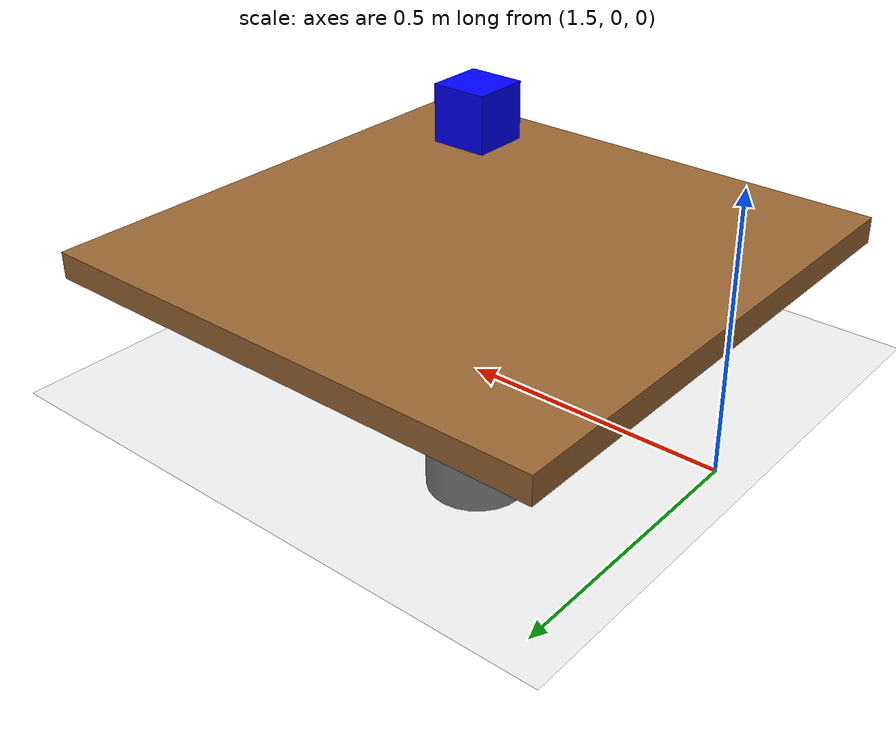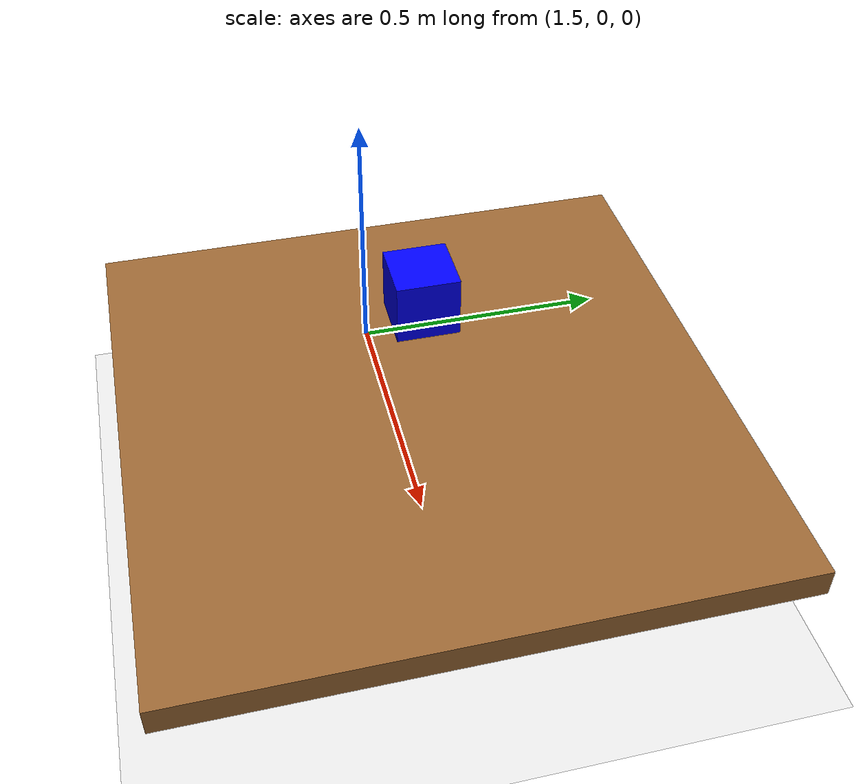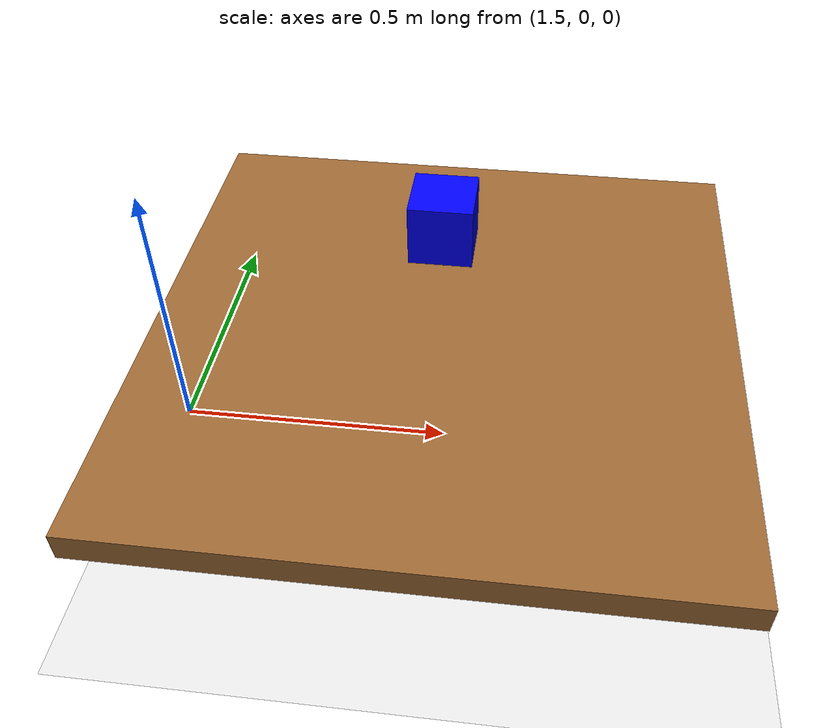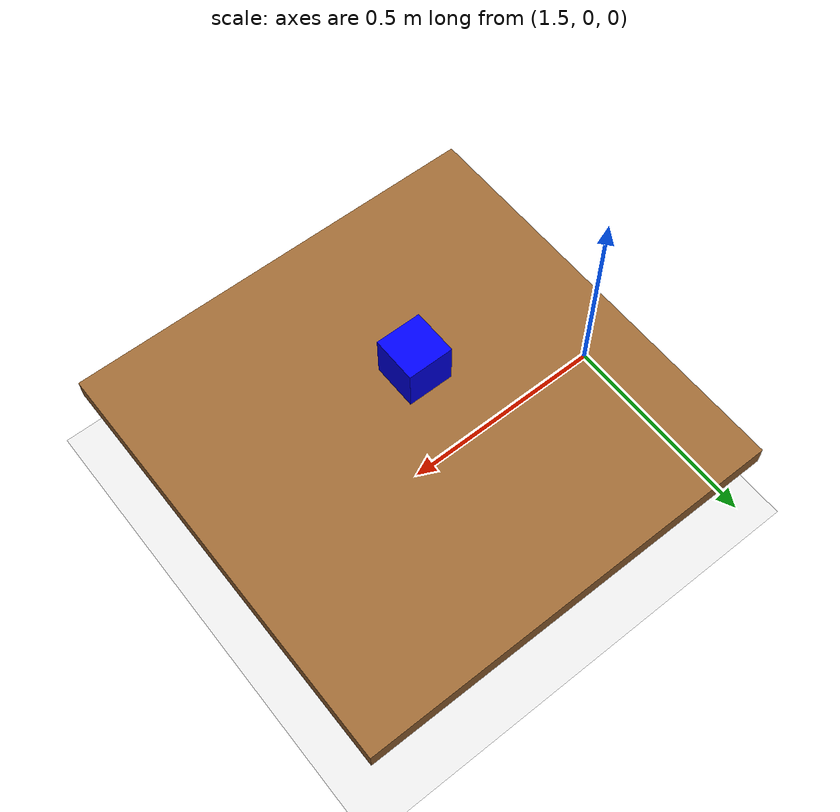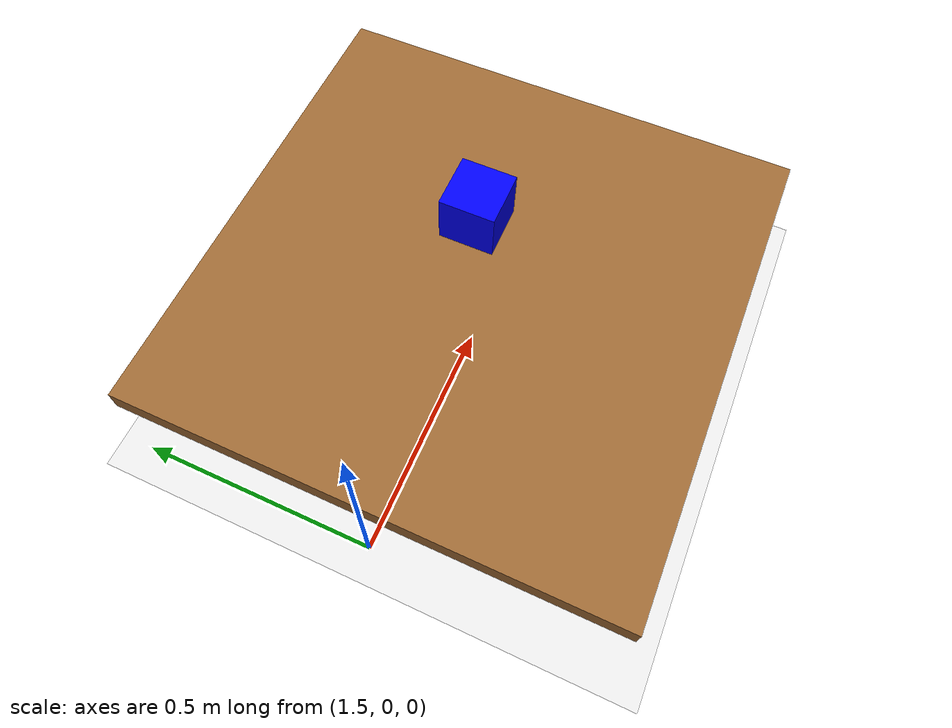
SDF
<?xml version="1.0" ?>
<sdf version="1.6">
  <world name="simple_world">

    <physics name="1ms" type="ignored">
      <max_step_size>0.001</max_step_size>
      <real_time_factor>1.0</real_time_factor>
    </physics>
    <plugin filename="gz-sim-physics-system" name="gz::sim::systems::Physics"/>
    <plugin filename="gz-sim-user-commands-system" name="gz::sim::systems::UserCommands"/>
    <plugin filename="gz-sim-scene-broadcaster-system" name="gz::sim::systems::SceneBroadcaster"/>
    <plugin filename="gz-sim-sensors-system" name="gz::sim::systems::Sensors">
        <render_engine>ogre2</render_engine>
    </plugin>

    <light type="directional" name="my_custom_sun">
      <cast_shadows>true</cast_shadows>
      <pose>0 0 10 0 0 0</pose>
      <diffuse>0.8 0.8 0.8 1</diffuse>
      <specular>0.2 0.2 0.2 1</specular>
      <direction>-0.5 0.1 -0.9</direction>
    </light>

    <model name="my_custom_ground">
      <static>true</static>
      <link name="link">
        <collision name="collision">
          <geometry><plane><normal>0 0 1</normal><size>100 100</size></plane></geometry>
        </collision>
        <visual name="visual">
          <geometry><plane><normal>0 0 1</normal><size>100 100</size></plane></geometry>
          <material>
            <ambient>0.8 0.8 0.8 1</ambient>
            <diffuse>0.8 0.8 0.8 1</diffuse>
          </material>
        </visual>
      </link>
    </model>

    <model name="table">
      <static>true</static>
      <pose>2 0 0.25 0 0 0</pose>
      <link name="link">
        <visual name="top_visual">
           <geometry><box><size>1.0 1.0 0.05</size></box></geometry>
           <material><ambient>0.6 0.4 0.2 1</ambient><diffuse>0.6 0.4 0.2 1</diffuse></material>
        </visual>
        <collision name="top_collision">
           <geometry><box><size>1.0 1.0 0.05</size></box></geometry>
        </collision>
        <visual name="leg_visual">
           <pose>0 0 -0.25 0 0 0</pose>
           <geometry><cylinder><radius>0.1</radius><length>0.5</length></cylinder></geometry>
           <material><ambient>0.2 0.2 0.2 1</ambient><diffuse>0.2 0.2 0.2 1</diffuse></material>
        </visual>
        <collision name="leg_collision">
           <pose>0 0 -0.25 0 0 0</pose>
           <geometry><cylinder><radius>0.1</radius><length>0.5</length></cylinder></geometry>
        </collision>
      </link>
    </model>

    <model name="blue_cube">
      <pose>2 0 0.5 0 0 0</pose>
      <link name="link">
        <inertial>
          <mass>0.1</mass>
          <inertia><ixx>0.0001</ixx><ixy>0</ixy><ixz>0</ixz><iyy>0.0001</iyy><iyz>0</iyz><izz>0.0001</izz></inertia>
        </inertial>
        <collision name="collision">
          <geometry><box><size>0.1 0.1 0.1</size></box></geometry>
        </collision>
        <visual name="visual">
          <geometry><box><size>0.1 0.1 0.1</size></box></geometry>
          <material><ambient>0 0 1 1</ambient><diffuse>0 0 1 1</diffuse></material>
        </visual>
      </link>
    </model>

  </world>
</sdf>
